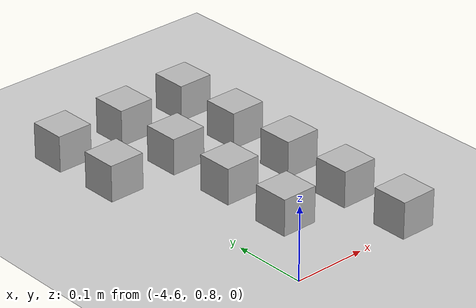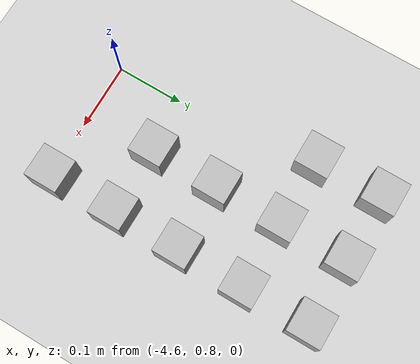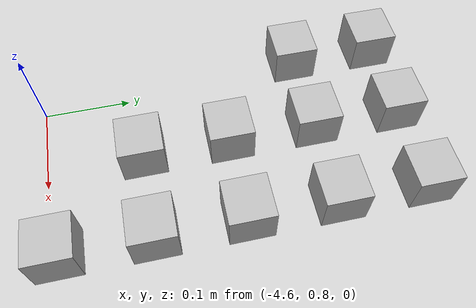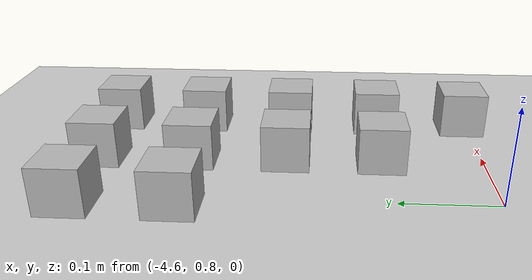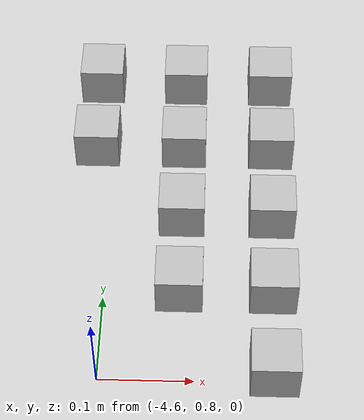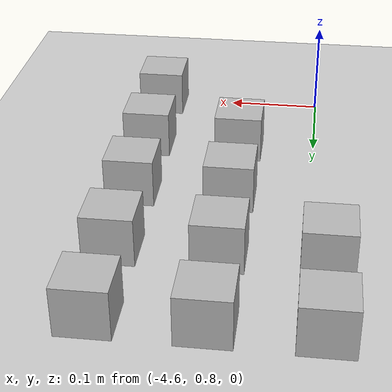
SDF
<sdf version="1.4">
 <world name="default">
  <model name="ground_plane">
   <static>1</static>
   <link name="link">
    <collision name="collision">
     <geometry><plane><normal>0 0 1</normal><size>100 100</size></plane></geometry>
     <surface><friction><ode><mu>100</mu><mu2>50</mu2></ode></friction></surface>
    </collision>
    <visual name="visual">
     <cast_shadows>0</cast_shadows>
     <geometry><plane><normal>0 0 1</normal><size>100 100</size></plane></geometry>
     <material>
      <script><uri>file://media/materials/scripts/gazebo.material</uri><name>Gazebo/Grey</name></script>
     </material>
    </visual>
    <velocity_decay><linear>0</linear><angular>0</angular></velocity_decay>
   </link>
  </model>
  <model name="at30">
   <static>0</static>
   <link name="link">
    <inertial>
     <mass>0.01</mass>
     <inertia><ixx>4e-05</ixx><ixy>0</ixy><ixz>0</ixz><iyy>4e-05</iyy><iyz>0</iyz><izz>4e-05</izz></inertia>
    </inertial>
    <visual name="visual">
     <geometry><box><size>0.05 0.05 0.05</size></box></geometry>
     <material>
      <script>
       <uri>model://at0/materials/scripts</uri>
       <uri>model://at0/materials/textures</uri>
       <name>at0/Diffuse</name>
      </script>
     </material>
    </visual>
    <collision name="collision">
     <geometry><box><size>0.05 0.05 0.05</size></box></geometry>
     <surface><friction><ode><mu>0.8</mu><mu2>0.7</mu2></ode></friction></surface>
    </collision>
    <velocity_decay><linear>0</linear><angular>0</angular></velocity_decay>
   </link>
   <pose>-4.41833 0.809652 0.025 0 -0 0</pose>
  </model>
  <model name="at37">
   <static>0</static>
   <link name="link">
    <inertial>
     <mass>0.01</mass>
     <inertia><ixx>4e-05</ixx><ixy>0</ixy><ixz>0</ixz><iyy>4e-05</iyy><iyz>0</iyz><izz>4e-05</izz></inertia>
    </inertial>
    <visual name="visual">
     <geometry><box><size>0.05 0.05 0.05</size></box></geometry>
     <material>
      <script>
       <uri>model://at0/materials/scripts</uri>
       <uri>model://at0/materials/textures</uri>
       <name>at0/Diffuse</name>
      </script>
     </material>
    </visual>
    <collision name="collision">
     <geometry><box><size>0.05 0.05 0.05</size></box></geometry>
     <surface><friction><ode><mu>0.8</mu><mu2>0.7</mu2></ode></friction></surface>
    </collision>
    <velocity_decay><linear>0</linear><angular>0</angular></velocity_decay>
   </link>
   <pose>-4.51833 0.909652 0.025 0 -0 0</pose>
  </model>
  <model name="at38">
   <static>0</static>
   <link name="link">
    <inertial>
     <mass>0.01</mass>
     <inertia><ixx>4e-05</ixx><ixy>0</ixy><ixz>0</ixz><iyy>4e-05</iyy><iyz>0</iyz><izz>4e-05</izz></inertia>
    </inertial>
    <visual name="visual">
     <geometry><box><size>0.05 0.05 0.05</size></box></geometry>
     <material>
      <script>
       <uri>model://at0/materials/scripts</uri>
       <uri>model://at0/materials/textures</uri>
       <name>at0/Diffuse</name>
      </script>
     </material>
    </visual>
    <collision name="collision">
     <geometry><box><size>0.05 0.05 0.05</size></box></geometry>
     <surface><friction><ode><mu>0.8</mu><mu2>0.7</mu2></ode></friction></surface>
    </collision>
    <velocity_decay><linear>0</linear><angular>0</angular></velocity_decay>
   </link>
   <pose>-4.41833 0.909652 0.025 0 -0 0</pose>
  </model>
  <model name="at45">
   <static>0</static>
   <link name="link">
    <inertial>
     <mass>0.01</mass>
     <inertia><ixx>4e-05</ixx><ixy>0</ixy><ixz>0</ixz><iyy>4e-05</iyy><iyz>0</iyz><izz>4e-05</izz></inertia>
    </inertial>
    <visual name="visual">
     <geometry><box><size>0.05 0.05 0.05</size></box></geometry>
     <material>
      <script>
       <uri>model://at0/materials/scripts</uri>
       <uri>model://at0/materials/textures</uri>
       <name>at0/Diffuse</name>
      </script>
     </material>
    </visual>
    <collision name="collision">
     <geometry><box><size>0.05 0.05 0.05</size></box></geometry>
     <surface><friction><ode><mu>0.8</mu><mu2>0.7</mu2></ode></friction></surface>
    </collision>
    <velocity_decay><linear>0</linear><angular>0</angular></velocity_decay>
   </link>
   <pose>-4.51833 1.00965 0.025 0 -0 0</pose>
  </model>
  <model name="at46">
   <static>0</static>
   <link name="link">
    <inertial>
     <mass>0.01</mass>
     <inertia><ixx>4e-05</ixx><ixy>0</ixy><ixz>0</ixz><iyy>4e-05</iyy><iyz>0</iyz><izz>4e-05</izz></inertia>
    </inertial>
    <visual name="visual">
     <geometry><box><size>0.05 0.05 0.05</size></box></geometry>
     <material>
      <script>
       <uri>model://at0/materials/scripts</uri>
       <uri>model://at0/materials/textures</uri>
       <name>at0/Diffuse</name>
      </script>
     </material>
    </visual>
    <collision name="collision">
     <geometry><box><size>0.05 0.05 0.05</size></box></geometry>
     <surface><friction><ode><mu>0.8</mu><mu2>0.7</mu2></ode></friction></surface>
    </collision>
    <velocity_decay><linear>0</linear><angular>0</angular></velocity_decay>
   </link>
   <pose>-4.41833 1.00965 0.025 0 -0 0</pose>
  </model>
  <model name="at52">
   <static>0</static>
   <link name="link">
    <inertial>
     <mass>0.01</mass>
     <inertia><ixx>4e-05</ixx><ixy>0</ixy><ixz>0</ixz><iyy>4e-05</iyy><iyz>0</iyz><izz>4e-05</izz></inertia>
    </inertial>
    <visual name="visual">
     <geometry><box><size>0.05 0.05 0.05</size></box></geometry>
     <material>
      <script>
       <uri>model://at0/materials/scripts</uri>
       <uri>model://at0/materials/textures</uri>
       <name>at0/Diffuse</name>
      </script>
     </material>
    </visual>
    <collision name="collision">
     <geometry><box><size>0.05 0.05 0.05</size></box></geometry>
     <surface><friction><ode><mu>0.8</mu><mu2>0.7</mu2></ode></friction></surface>
    </collision>
    <velocity_decay><linear>0</linear><angular>0</angular></velocity_decay>
   </link>
   <pose>-4.61833 1.10965 0.025 0 -0 0</pose>
  </model>
  <model name="at53">
   <static>0</static>
   <link name="link">
    <inertial>
     <mass>0.01</mass>
     <inertia><ixx>4e-05</ixx><ixy>0</ixy><ixz>0</ixz><iyy>4e-05</iyy><iyz>0</iyz><izz>4e-05</izz></inertia>
    </inertial>
    <visual name="visual">
     <geometry><box><size>0.05 0.05 0.05</size></box></geometry>
     <material>
      <script>
       <uri>model://at0/materials/scripts</uri>
       <uri>model://at0/materials/textures</uri>
       <name>at0/Diffuse</name>
      </script>
     </material>
    </visual>
    <collision name="collision">
     <geometry><box><size>0.05 0.05 0.05</size></box></geometry>
     <surface><friction><ode><mu>0.8</mu><mu2>0.7</mu2></ode></friction></surface>
    </collision>
    <velocity_decay><linear>0</linear><angular>0</angular></velocity_decay>
   </link>
   <pose>-4.51833 1.10965 0.025 0 -0 0</pose>
  </model>
  <model name="at54">
   <static>0</static>
   <link name="link">
    <inertial>
     <mass>0.01</mass>
     <inertia><ixx>4e-05</ixx><ixy>0</ixy><ixz>0</ixz><iyy>4e-05</iyy><iyz>0</iyz><izz>4e-05</izz></inertia>
    </inertial>
    <visual name="visual">
     <geometry><box><size>0.05 0.05 0.05</size></box></geometry>
     <material>
      <script>
       <uri>model://at0/materials/scripts</uri>
       <uri>model://at0/materials/textures</uri>
       <name>at0/Diffuse</name>
      </script>
     </material>
    </visual>
    <collision name="collision">
     <geometry><box><size>0.05 0.05 0.05</size></box></geometry>
     <surface><friction><ode><mu>0.8</mu><mu2>0.7</mu2></ode></friction></surface>
    </collision>
    <velocity_decay><linear>0</linear><angular>0</angular></velocity_decay>
   </link>
   <pose>-4.41833 1.10965 0.025 0 -0 0</pose>
  </model>
  <model name="at60">
   <static>0</static>
   <link name="link">
    <inertial>
     <mass>0.01</mass>
     <inertia><ixx>4e-05</ixx><ixy>0</ixy><ixz>0</ixz><iyy>4e-05</iyy><iyz>0</iyz><izz>4e-05</izz></inertia>
    </inertial>
    <visual name="visual">
     <geometry><box><size>0.05 0.05 0.05</size></box></geometry>
     <material>
      <script>
       <uri>model://at0/materials/scripts</uri>
       <uri>model://at0/materials/textures</uri>
       <name>at0/Diffuse</name>
      </script>
     </material>
    </visual>
    <collision name="collision">
     <geometry><box><size>0.05 0.05 0.05</size></box></geometry>
     <surface><friction><ode><mu>0.8</mu><mu2>0.7</mu2></ode></friction></surface>
    </collision>
    <velocity_decay><linear>0</linear><angular>0</angular></velocity_decay>
   </link>
   <pose>-4.61833 1.20965 0.025 0 -0 0</pose>
  </model>
  <model name="at61">
   <static>0</static>
   <link name="link">
    <inertial>
     <mass>0.01</mass>
     <inertia><ixx>4e-05</ixx><ixy>0</ixy><ixz>0</ixz><iyy>4e-05</iyy><iyz>0</iyz><izz>4e-05</izz></inertia>
    </inertial>
    <visual name="visual">
     <geometry><box><size>0.05 0.05 0.05</size></box></geometry>
     <material>
      <script>
       <uri>model://at0/materials/scripts</uri>
       <uri>model://at0/materials/textures</uri>
       <name>at0/Diffuse</name>
      </script>
     </material>
    </visual>
    <collision name="collision">
     <geometry><box><size>0.05 0.05 0.05</size></box></geometry>
     <surface><friction><ode><mu>0.8</mu><mu2>0.7</mu2></ode></friction></surface>
    </collision>
    <velocity_decay><linear>0</linear><angular>0</angular></velocity_decay>
   </link>
   <pose>-4.51833 1.20965 0.025 0 -0 0</pose>
  </model>
  <model name="at62">
   <static>0</static>
   <link name="link">
    <inertial>
     <mass>0.01</mass>
     <inertia><ixx>4e-05</ixx><ixy>0</ixy><ixz>0</ixz><iyy>4e-05</iyy><iyz>0</iyz><izz>4e-05</izz></inertia>
    </inertial>
    <visual name="visual">
     <geometry><box><size>0.05 0.05 0.05</size></box></geometry>
     <material>
      <script>
       <uri>model://at0/materials/scripts</uri>
       <uri>model://at0/materials/textures</uri>
       <name>at0/Diffuse</name>
      </script>
     </material>
    </visual>
    <collision name="collision">
     <geometry><box><size>0.05 0.05 0.05</size></box></geometry>
     <surface><friction><ode><mu>0.8</mu><mu2>0.7</mu2></ode></friction></surface>
    </collision>
    <velocity_decay><linear>0</linear><angular>0</angular></velocity_decay>
   </link>
   <pose>-4.41833 1.20965 0.025 0 -0 0</pose>
  </model>
 </world>
</sdf>
